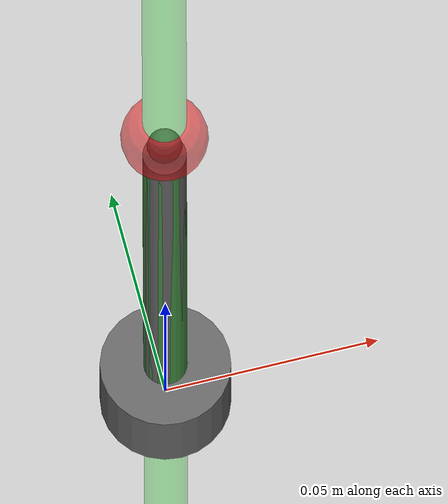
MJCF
<mujoco model="stick_model">
    <default>
        <joint limited="false" damping="5.0" armature="0.1" frictionloss="0.1" />
        <geom condim="4" contype="1" conaffinity="1" />

        <default class="collision">
            <geom group="0" rgba="0.4 0.4 0.4 1" />
        </default>

        <default class="visual">
            <geom group="1" conaffinity="0" contype="0" />
        </default>
    </default>

    <compiler angle="radian" eulerseq="xyz" />

    <asset>
        <material name="stick_material" rgba="0.3 0.3 0.3 1" />
        <material name="tip_material" rgba="0.9 0.2 0.2 1" />
    </asset>

    <worldbody>
        <body name="base_ee" pos="0 0 0" euler="0 0 0">
            <site name="ft_frame" pos="0 0 0" size="0.01 0.01 0.01" rgba="1 0 0 1" type="sphere" group="1" />

            <body name="eef" pos="0 0 0.145" quat="0.707105 0 0 -0.707105">
                <site name="grip_site" pos="0 0 0" size="0.01 0.01 0.01" rgba="1 0 0 0.5" type="sphere" group="1" />
                <site name="ee_x" pos="0.1 0 0" size="0.005 .1" quat="0.707105 0 0.707108 0" rgba="1 0 0 0" type="cylinder" group="1" />
                <site name="ee_y" pos="0 0.1 0" size="0.005 .1" quat="0.707105 0.707108 0 0" rgba="0 1 0 0" type="cylinder" group="1" />
                <site name="ee_z" pos="0 0 0.1" size="0.005 .1" quat="1 0 0 0" rgba="0 0 1 0" type="cylinder" group="1" />
                <site name="grip_site_cylinder" pos="0 0 0" size="0.005 10" rgba="0 1 0 0.3" type="cylinder" group="1" />
            </body>

            <!-- Mounting base (small cylinder at the ee attachment point) -->
            <geom class="collision" type="cylinder" size="0.015 0.01" pos="0 0 0.005" material="stick_material" />
            <geom class="visual" type="cylinder" size="0.015 0.01" pos="0 0 0.005" material="stick_material" />

            <!-- Stick shaft -->
            <geom class="collision" type="cylinder" size="0.005 0.06" pos="0 0 0.075" material="stick_material" />
            <geom class="visual" type="cylinder" size="0.005 0.06" pos="0 0 0.075" material="stick_material" />

            <!-- Small spherical tip for button pressing -->
            <geom name="stick_tip" class="collision" type="sphere" size="0.004" pos="0 0 0.14" material="tip_material" />
            <geom class="visual" type="sphere" size="0.004" pos="0 0 0.14" material="tip_material" />

            <inertial
                pos="0 0 0.07"
                mass="0.05"
                diaginertia="0.0001 0.0001 0.00005"
            />
        </body>
    </worldbody>

    <sensor>
        <force name="force_ee" site="ft_frame" />
        <torque name="torque_ee" site="ft_frame" />
    </sensor>
</mujoco>
